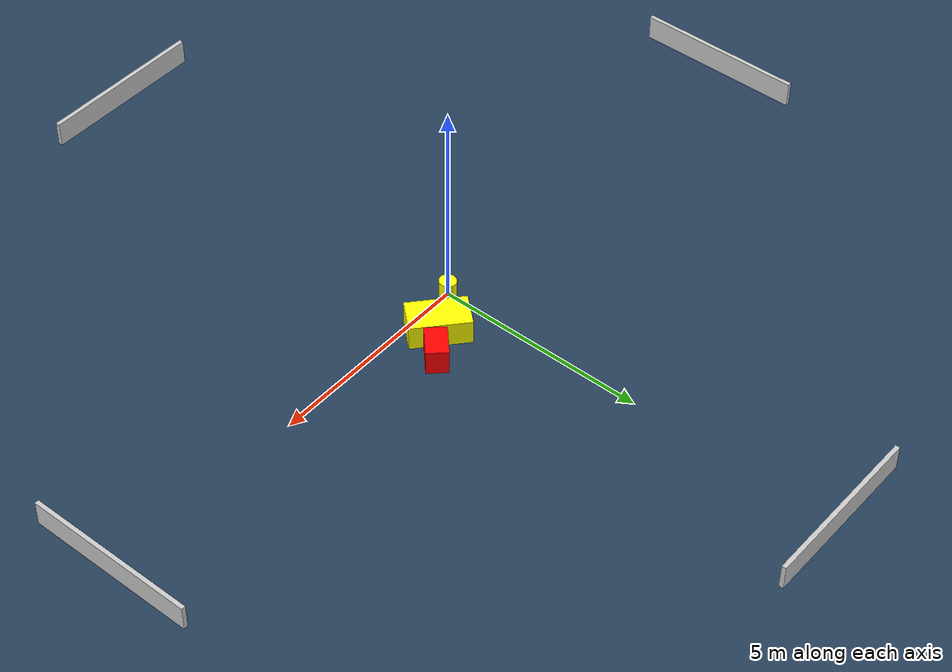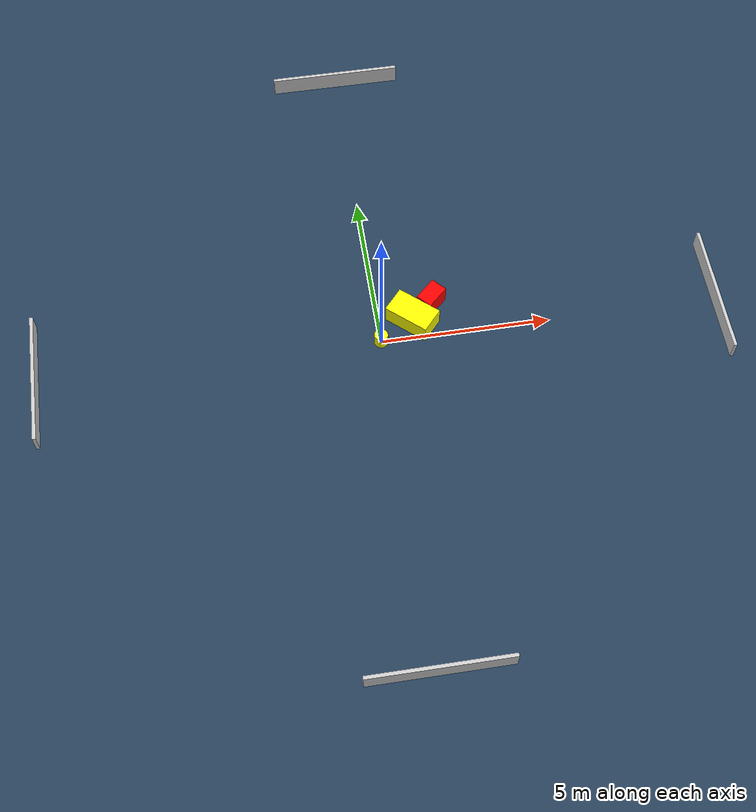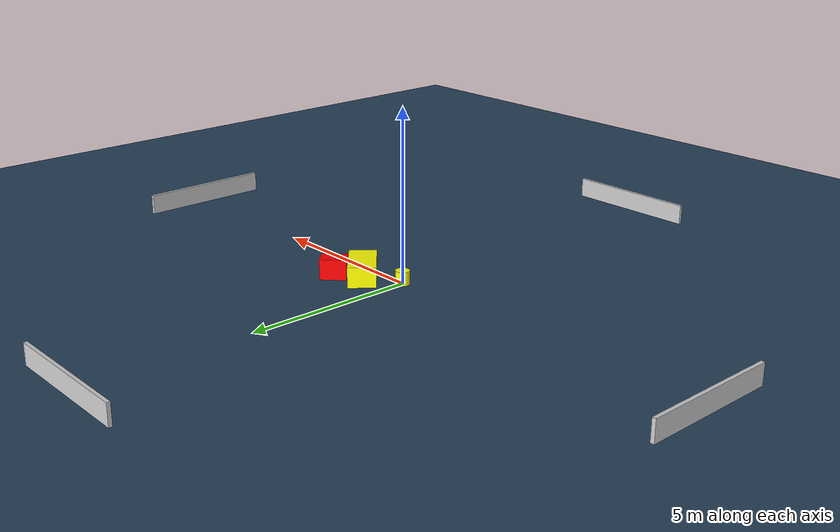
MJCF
<?xml version="1.0" ?>
<mujoco model="generated_environment">
  <option timestep="0.01" integrator="RK4" cone="elliptic"/>
  <default>
    <geom density="1"/>
  </default>
  <asset>
    <texture builtin="gradient" height="3072" name="skybox" rgb1="0.3 0.5 0.7" rgb2="0 0 0" type="skybox" width="512"/>
    <texture builtin="checker" height="300" name="groundplane" rgb1="0.2 0.3 0.4" rgb2="0.1 0.2 0.3" type="2d" width="300"/>
    <material name="groundplane" reflectance="0.2" texrepeat="5 5" texture="groundplane"/>
  </asset>
  <worldbody>
    <light dir="0 0 -1" directional="true" pos="0 0 1.5"/>
    <geom condim="3" friction="0.5 0.005 0.001" material="groundplane" name="floor" pos="0 0 0" size="0 0 0.05" type="plane"/>
    <body name="walls">
      <geom name="wall_1" condim="4" pos="-10.0 0.0 0.3" rgba="0.800000011920929 0.800000011920929 0.800000011920929 1.0" size="0.05 2.0 0.3" type="box"/>
      <geom name="wall_2" condim="4" pos="10.0 0.0 0.3" rgba="0.800000011920929 0.800000011920929 0.800000011920929 1.0" size="0.05 2.0 0.3" type="box"/>
      <geom name="wall_3" condim="4" pos="0.0 -10.0 0.3" rgba="0.800000011920929 0.800000011920929 0.800000011920929 1.0" size="2.0 0.05 0.3" type="box"/>
      <geom name="wall_4" condim="4" pos="0.0 10.0 0.3" rgba="0.800000011920929 0.800000011920929 0.800000011920929 1.0" size="2.0 0.05 0.3" type="box"/>
    </body>
    <body name="robot">
      <joint name="joint_x" type="slide" pos="0 0 0" axis="1 0 0"/>
      <joint name="joint_y" type="slide" pos="0 0 0" axis="0 1 0"/>
      <geom name="robot" type="cylinder" pos="0.0 0.0 0.2" size="0.2 0.2 0.0" mass="5.0" friction="1.0 0.005 0.0001" condim="4" rgba="1.0 1.0 0.0 1.0"/>
    </body>
    <body name="obstacle_1_movable">
      <geom name="obstacle_1_movable" condim="4" pos="1.019794113456615 0.5962719510507868 0.3" euler="0 0 318.6863620684994" friction="0.0 0.005 0.001" rgba="1.0 1.0 0.0 1.0" size="0.6887253795861735 0.39686582038570584 0.3" type="box" mass="0.1"/>
      <joint type="free"/>
    </body>
    <body name="obstacle_2_static">
      <geom name="obstacle_2_static" condim="4" pos="1.663209154315962 1.0918354713424967 0.3" euler="0 0 313.37104574769745" friction="0.0 0.005 0.001" rgba="1.0 0.0 0.0 1.0" size="0.25148872123500843 0.3778058812221138 0.3" type="box"/>
    </body>
  </worldbody>
  <actuator>
    <motor name="actuator_x" joint="joint_x" gear="1" ctrlrange="-1 1"/>
    <motor name="actuator_y" joint="joint_y" gear="1" ctrlrange="-1 1"/>
  </actuator>
</mujoco>
